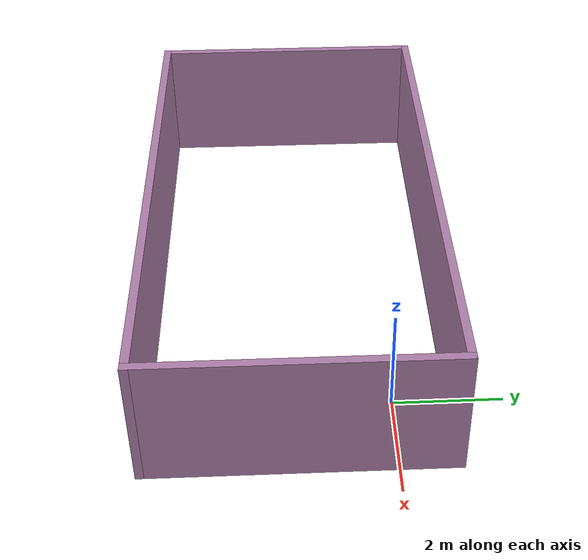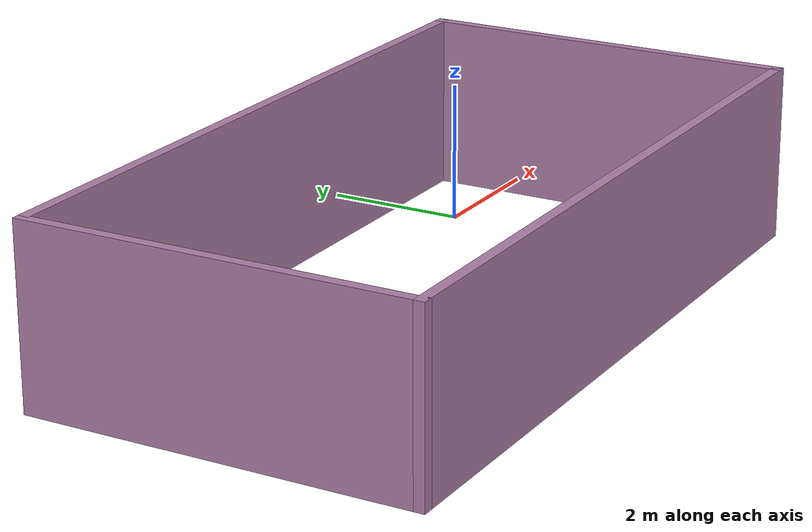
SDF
<?xml version='1.0'?>
<sdf version='1.7'>
  <model name='purple_wall'>
    <pose>-3.58716 -1.64705 0 0 -0 0</pose>
    <link name='Wall_28'>
      <collision name='Wall_28_Collision'>
        <geometry>
          <box>
            <size>10.25 0.15 2.5</size>
          </box>
        </geometry>
        <pose>0 0 1.25 0 -0 0</pose>
      </collision>
      <visual name='Wall_28_Visual'>
        <pose>0 0 1.25 0 -0 0</pose>
        <geometry>
          <box>
            <size>10.25 0.15 2.5</size>
          </box>
        </geometry>
        <material>
          <script>
            <uri>file://media/materials/scripts/gazebo.material</uri>
            <name>Gazebo/Grey</name>
          </script>
          <ambient>0.678431 0.498039 0.658824 1</ambient>
        </material>
        <meta>
          <layer>0</layer>
        </meta>
      </visual>
      <pose>0 -2.675 0 0 -0 3.14159</pose>
    </link>
    <link name='Wall_29'>
      <collision name='Wall_29_Collision'>
        <geometry>
          <box>
            <size>5.5 0.15 2.5</size>
          </box>
        </geometry>
        <pose>0 0 1.25 0 -0 0</pose>
      </collision>
      <visual name='Wall_29_Visual'>
        <pose>0 0 1.25 0 -0 0</pose>
        <geometry>
          <box>
            <size>5.5 0.15 2.5</size>
          </box>
        </geometry>
        <material>
          <script>
            <uri>file://media/materials/scripts/gazebo.material</uri>
            <name>Gazebo/Grey</name>
          </script>
          <ambient>0.678431 0.498039 0.658824 1</ambient>
        </material>
        <meta>
          <layer>0</layer>
        </meta>
      </visual>
      <pose>-5.05 -0 0 0 -0 1.5708</pose>
    </link>
    <link name='Wall_31'>
      <collision name='Wall_31_Collision'>
        <geometry>
          <box>
            <size>10.25 0.15 2.5</size>
          </box>
        </geometry>
        <pose>0 0 1.25 0 -0 0</pose>
      </collision>
      <visual name='Wall_31_Visual'>
        <pose>0 0 1.25 0 -0 0</pose>
        <geometry>
          <box>
            <size>10.25 0.15 2.5</size>
          </box>
        </geometry>
        <material>
          <script>
            <uri>file://media/materials/scripts/gazebo.material</uri>
            <name>Gazebo/Grey</name>
          </script>
          <ambient>0.678431 0.498039 0.658824 1</ambient>
        </material>
        <meta>
          <layer>0</layer>
        </meta>
      </visual>
      <pose>0 2.675 0 0 -0 0</pose>
    </link>
    <link name='Wall_32'>
      <collision name='Wall_32_Collision'>
        <geometry>
          <box>
            <size>5.5 0.15 2.5</size>
          </box>
        </geometry>
        <pose>0 0 1.25 0 -0 0</pose>
      </collision>
      <visual name='Wall_32_Visual'>
        <pose>0 0 1.25 0 -0 0</pose>
        <geometry>
          <box>
            <size>5.5 0.15 2.5</size>
          </box>
        </geometry>
        <material>
          <script>
            <uri>file://media/materials/scripts/gazebo.material</uri>
            <name>Gazebo/Grey</name>
          </script>
          <ambient>0.678431 0.498039 0.658824 1</ambient>
        </material>
        <meta>
          <layer>0</layer>
        </meta>
      </visual>
      <pose>5.05 -0 0 0 -0 -1.5708</pose>
    </link>
    <static>1</static>
  </model>
</sdf>
